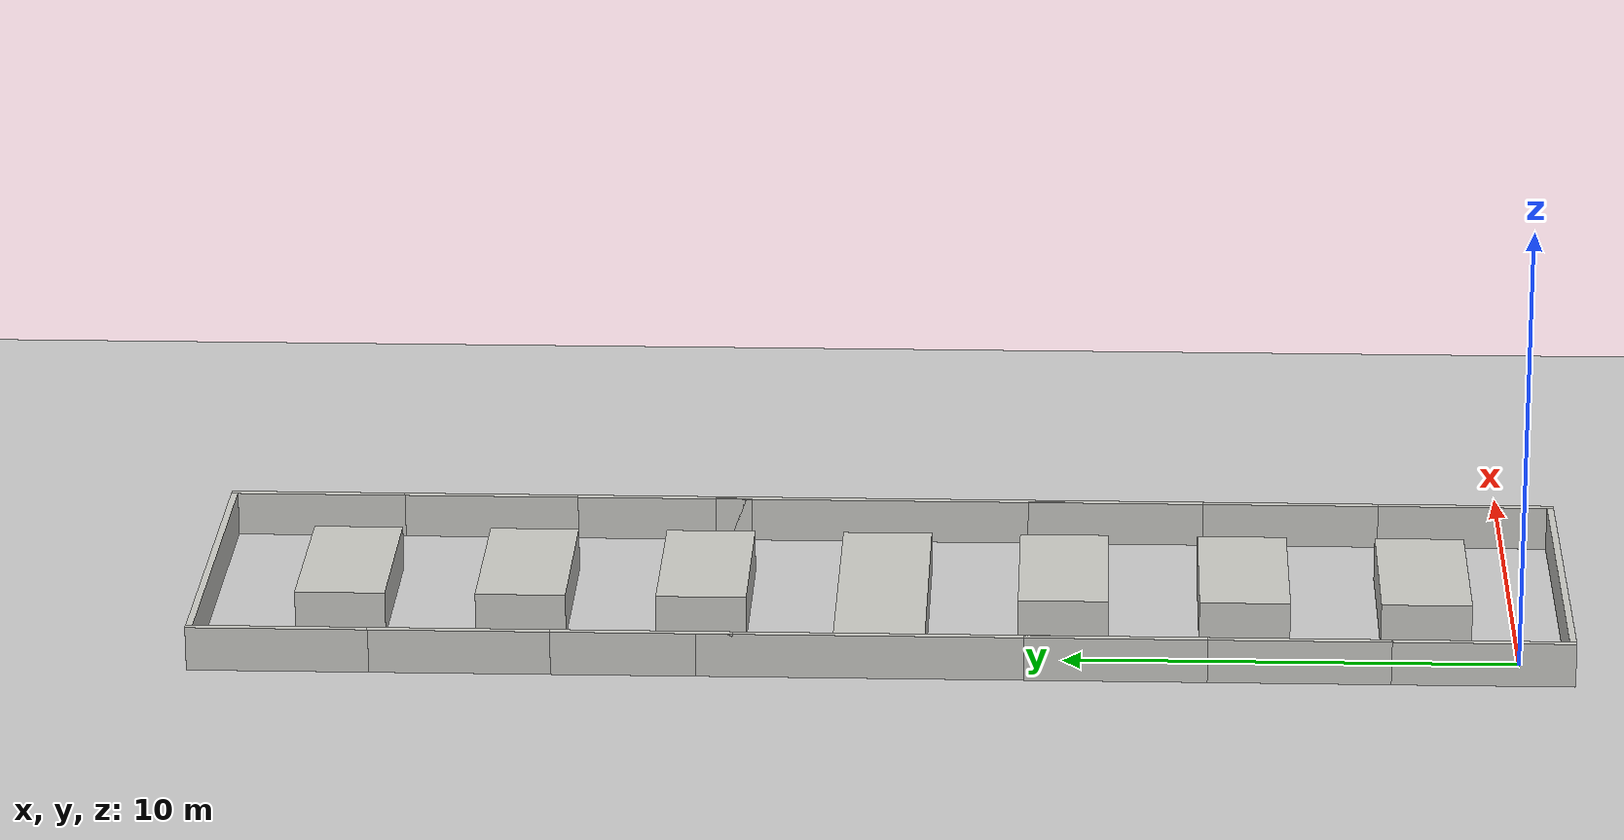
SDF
<sdf version="1.6">
 <world name="default">
  <light name="sun" type="directional">
   <pose>0 0 10 0 -0 0</pose>
   <diffuse>0.8 0.8 0.8 1</diffuse>
   <specular>0.1 0.1 0.1 1</specular>
   <attenuation>
    <range>1000</range>
    <constant>0.9</constant>
    <linear>0.01</linear>
    <quadratic>0.001</quadratic>
   </attenuation>
   <direction>-0.5 0.5 -1</direction>
  </light>
  <model name="ground_plane">
   <static>1</static>
   <link name="link">
    <collision name="collision">
     <geometry><plane><normal>0 0 1</normal><size>100 100</size></plane></geometry>
     <surface><friction><ode><mu>100</mu><mu2>50</mu2></ode></friction></surface>
    </collision>
    <visual name="visual">
     <cast_shadows>0</cast_shadows>
     <geometry><plane><normal>0 0 1</normal><size>100 100</size></plane></geometry>
     <material>
      <script><uri>file://media/materials/scripts/concrete.material</uri><name>Concrete/1</name></script>
     </material>
    </visual>
   </link>
  </model>
  <gravity>0 0 -9.8</gravity>
  <magnetic_field>6e-06 2.3e-05 -4.2e-05</magnetic_field>
  <atmosphere type="adiabatic"/>
  <physics name="default_physics" default="0" type="ode">
   <max_step_size>0.001</max_step_size>
   <real_time_factor>1.5</real_time_factor>
   <real_time_update_rate>1500</real_time_update_rate>
  </physics>
  <scene><ambient>0.4 0.4 0.4 1</ambient><background>0.7 0.7 0.7 1</background><shadows>1</shadows></scene>
  <spherical_coordinates>
   <surface_model>EARTH_WGS84</surface_model>
   <latitude_deg>0</latitude_deg>
   <longitude_deg>0</longitude_deg>
   <elevation>0</elevation>
   <heading_deg>0</heading_deg>
  </spherical_coordinates>
  <model name="wall_8meter">
   <static>1</static>
   <pose>3 -1.075 0 0 -0 0</pose>
   <link name="Wall">
    <collision name="Wall_Collision">
     <geometry><box><size>8 0.15 1</size></box></geometry>
     <pose>0 0 0.5 0 -0 0</pose>
    </collision>
    <visual name="Wall_Visual">
     <pose>0 0 0.5 0 -0 0</pose>
     <geometry><box><size>8 0.15 1</size></box></geometry>
     <material>
      <script><uri>file://media/materials/scripts/gazebo.material</uri><name>Gazebo/CeilingTiled</name></script>
      <ambient>1 0.764706 0.305882 1</ambient>
     </material>
    </visual>
   </link>
  </model>
  <model name="block_2x4m">
   <pose>3 2 0 0 0 -1.5708</pose>
   <link name="Block">
    <collision name="Block_Collision">
     <geometry><box><size>2 4 1</size></box></geometry>
     <pose>0 0 0.5 0 -0 0</pose>
    </collision>
    <visual name="Block_Visual">
     <pose>0 0 0.5 0 -0 0</pose>
     <geometry><box><size>2 4 1</size></box></geometry>
     <material>
      <script><uri>file://media/materials/scripts/gazebo.material</uri><name>Gazebo/CeilingTiled</name></script>
      <ambient>1 0.764706 0.305882 1</ambient>
     </material>
    </visual>
   </link>
   <static>1</static>
  </model>
  <model name="block_2x4m_clone">
   <pose>3 6 0 0 0 -1.5708</pose>
   <link name="Block">
    <collision name="Block_Collision">
     <geometry><box><size>2 4 1</size></box></geometry>
     <pose>0 0 0.5 0 -0 0</pose>
    </collision>
    <visual name="Block_Visual">
     <pose>0 0 0.5 0 -0 0</pose>
     <geometry><box><size>2 4 1</size></box></geometry>
     <material>
      <script><uri>file://media/materials/scripts/gazebo.material</uri><name>Gazebo/CeilingTiled</name></script>
      <ambient>1 0.764706 0.305882 1</ambient>
     </material>
    </visual>
   </link>
   <static>1</static>
  </model>
  <model name="block_2x6m_0">
   <pose>2 14 0 0 0 -1.5708</pose>
   <link name="Block">
    <collision name="Block_Collision">
     <geometry><box><size>2 6 1</size></box></geometry>
     <pose>0 0 0.5 0 -0 0</pose>
    </collision>
    <visual name="Block_Visual">
     <pose>0 0 0.5 0 -0 0</pose>
     <geometry><box><size>2 6 1</size></box></geometry>
     <material>
      <script><uri>file://media/materials/scripts/gazebo.material</uri><name>Gazebo/CeilingTiled</name></script>
      <ambient>1 0.764706 0.305882 1</ambient>
     </material>
    </visual>
   </link>
   <static>1</static>
  </model>
  <model name="block_2x4m_clone_clone">
   <pose>3 10 0 0 0 -1.5708</pose>
   <link name="Block">
    <collision name="Block_Collision">
     <geometry><box><size>2 4 1</size></box></geometry>
     <pose>0 0 0.5 0 -0 0</pose>
    </collision>
    <visual name="Block_Visual">
     <pose>0 0 0.5 0 -0 0</pose>
     <geometry><box><size>2 4 1</size></box></geometry>
     <material>
      <script><uri>file://media/materials/scripts/gazebo.material</uri><name>Gazebo/CeilingTiled</name></script>
      <ambient>1 0.764706 0.305882 1</ambient>
     </material>
    </visual>
   </link>
   <static>1</static>
  </model>
  <model name="block_2x4m_clone_clone_0">
   <pose>3 18 0 0 0 -1.5708</pose>
   <link name="Block">
    <collision name="Block_Collision">
     <geometry><box><size>2 4 1</size></box></geometry>
     <pose>0 0 0.5 0 -0 0</pose>
    </collision>
    <visual name="Block_Visual">
     <pose>0 0 0.5 0 -0 0</pose>
     <geometry><box><size>2 4 1</size></box></geometry>
     <material>
      <script><uri>file://media/materials/scripts/gazebo.material</uri><name>Gazebo/CeilingTiled</name></script>
      <ambient>1 0.764706 0.305882 1</ambient>
     </material>
    </visual>
   </link>
   <static>1</static>
  </model>
  <model name="wall_8meter_clone">
   <static>1</static>
   <pose>3 29.075 0 0 -0 0</pose>
   <link name="Wall">
    <collision name="Wall_Collision">
     <geometry><box><size>8 0.15 1</size></box></geometry>
     <pose>0 0 0.5 0 -0 0</pose>
    </collision>
    <visual name="Wall_Visual">
     <pose>0 0 0.5 0 -0 0</pose>
     <geometry><box><size>8 0.15 1</size></box></geometry>
     <material>
      <script><uri>file://media/materials/scripts/gazebo.material</uri><name>Gazebo/CeilingTiled</name></script>
      <ambient>1 0.764706 0.305882 1</ambient>
     </material>
    </visual>
   </link>
  </model>
  <model name="wall_4meter">
   <static>1</static>
   <pose>7.075 0.850301 0 0 0 -1.5708</pose>
   <link name="Wall">
    <collision name="Wall_Collision">
     <geometry><box><size>4 0.15 1</size></box></geometry>
     <pose>0 0 0.5 0 -0 0</pose>
    </collision>
    <visual name="Wall_Visual">
     <pose>0 0 0.5 0 -0 0</pose>
     <geometry><box><size>4 0.15 1</size></box></geometry>
     <material>
      <script><uri>file://media/materials/scripts/gazebo.material</uri><name>Gazebo/CeilingTiled</name></script>
      <ambient>1 0.764706 0.305882 1</ambient>
     </material>
    </visual>
   </link>
  </model>
  <model name="wall_4meter_clone">
   <static>1</static>
   <pose>7.075 4.84786 0 0 0 -1.5708</pose>
   <link name="Wall">
    <collision name="Wall_Collision">
     <geometry><box><size>4 0.15 1</size></box></geometry>
     <pose>0 0 0.5 0 -0 0</pose>
    </collision>
    <visual name="Wall_Visual">
     <pose>0 0 0.5 0 -0 0</pose>
     <geometry><box><size>4 0.15 1</size></box></geometry>
     <material>
      <script><uri>file://media/materials/scripts/gazebo.material</uri><name>Gazebo/CeilingTiled</name></script>
      <ambient>1 0.764706 0.305882 1</ambient>
     </material>
    </visual>
   </link>
  </model>
  <model name="wall_4meter_clone_clone_0">
   <static>1</static>
   <pose>7.07504 23.1666 0 0 0 -1.5708</pose>
   <link name="Wall">
    <collision name="Wall_Collision">
     <geometry><box><size>4 0.15 1</size></box></geometry>
     <pose>0 0 0.5 0 -0 0</pose>
    </collision>
    <visual name="Wall_Visual">
     <pose>0 0 0.5 0 -0 0</pose>
     <geometry><box><size>4 0.15 1</size></box></geometry>
     <material>
      <script><uri>file://media/materials/scripts/gazebo.material</uri><name>Gazebo/CeilingTiled</name></script>
      <ambient>1 0.764706 0.305882 1</ambient>
     </material>
    </visual>
   </link>
  </model>
  <model name="wall_4meter_clone_clone_1">
   <static>1</static>
   <pose>7.07504 27.1489 0 0 0 -1.5708</pose>
   <link name="Wall">
    <collision name="Wall_Collision">
     <geometry><box><size>4 0.15 1</size></box></geometry>
     <pose>0 0 0.5 0 -0 0</pose>
    </collision>
    <visual name="Wall_Visual">
     <pose>0 0 0.5 0 -0 0</pose>
     <geometry><box><size>4 0.15 1</size></box></geometry>
     <material>
      <script><uri>file://media/materials/scripts/gazebo.material</uri><name>Gazebo/CeilingTiled</name></script>
      <ambient>1 0.764706 0.305882 1</ambient>
     </material>
    </visual>
   </link>
  </model>
  <model name="wall_4meter_clone_0">
   <static>1</static>
   <pose>-1.075 0.850891 0 0 0 -1.5708</pose>
   <link name="Wall">
    <collision name="Wall_Collision">
     <geometry><box><size>4 0.15 1</size></box></geometry>
     <pose>0 0 0.5 0 -0 0</pose>
    </collision>
    <visual name="Wall_Visual">
     <pose>0 0 0.5 0 -0 0</pose>
     <geometry><box><size>4 0.15 1</size></box></geometry>
     <material>
      <script><uri>file://media/materials/scripts/gazebo.material</uri><name>Gazebo/CeilingTiled</name></script>
      <ambient>1 0.764706 0.305882 1</ambient>
     </material>
    </visual>
   </link>
  </model>
  <model name="wall_4meter_clone_0_clone">
   <static>1</static>
   <pose>-1.075 4.85066 0 0 0 -1.5708</pose>
   <link name="Wall">
    <collision name="Wall_Collision">
     <geometry><box><size>4 0.15 1</size></box></geometry>
     <pose>0 0 0.5 0 -0 0</pose>
    </collision>
    <visual name="Wall_Visual">
     <pose>0 0 0.5 0 -0 0</pose>
     <geometry><box><size>4 0.15 1</size></box></geometry>
     <material>
      <script><uri>file://media/materials/scripts/gazebo.material</uri><name>Gazebo/CeilingTiled</name></script>
      <ambient>1 0.764706 0.305882 1</ambient>
     </material>
    </visual>
   </link>
  </model>
  <model name="wall_4meter_clone_0_clone_0">
   <static>1</static>
   <pose>-1.075 27.1546 0 0 0 -1.5708</pose>
   <link name="Wall">
    <collision name="Wall_Collision">
     <geometry><box><size>4 0.15 1</size></box></geometry>
     <pose>0 0 0.5 0 -0 0</pose>
    </collision>
    <visual name="Wall_Visual">
     <pose>0 0 0.5 0 -0 0</pose>
     <geometry><box><size>4 0.15 1</size></box></geometry>
     <material>
      <script><uri>file://media/materials/scripts/gazebo.material</uri><name>Gazebo/CeilingTiled</name></script>
      <ambient>1 0.764706 0.305882 1</ambient>
     </material>
    </visual>
   </link>
  </model>
  <model name="wall_4meter_clone_0_clone_1">
   <static>1</static>
   <pose>-1.075 23.1759 0 0 0 -1.5708</pose>
   <link name="Wall">
    <collision name="Wall_Collision">
     <geometry><box><size>4 0.15 1</size></box></geometry>
     <pose>0 0 0.5 0 -0 0</pose>
    </collision>
    <visual name="Wall_Visual">
     <pose>0 0 0.5 0 -0 0</pose>
     <geometry><box><size>4 0.15 1</size></box></geometry>
     <material>
      <script><uri>file://media/materials/scripts/gazebo.material</uri><name>Gazebo/CeilingTiled</name></script>
      <ambient>1 0.764706 0.305882 1</ambient>
     </material>
    </visual>
   </link>
  </model>
  <model name="block_2x4m_clone_clone_clone">
   <pose>3 22 0 0 0 -1.5708</pose>
   <link name="Block">
    <collision name="Block_Collision">
     <geometry><box><size>2 4 1</size></box></geometry>
     <pose>0 0 0.5 0 -0 0</pose>
    </collision>
    <visual name="Block_Visual">
     <pose>0 0 0.5 0 -0 0</pose>
     <geometry><box><size>2 4 1</size></box></geometry>
     <material>
      <script><uri>file://media/materials/scripts/gazebo.material</uri><name>Gazebo/CeilingTiled</name></script>
      <ambient>1 0.764706 0.305882 1</ambient>
     </material>
    </visual>
   </link>
   <static>1</static>
  </model>
  <model name="block_2x4m_clone_clone_clone_0">
   <pose>3 26 0 0 0 -1.5708</pose>
   <link name="Block">
    <collision name="Block_Collision">
     <geometry><box><size>2 4 1</size></box></geometry>
     <pose>0 0 0.5 0 -0 0</pose>
    </collision>
    <visual name="Block_Visual">
     <pose>0 0 0.5 0 -0 0</pose>
     <geometry><box><size>2 4 1</size></box></geometry>
     <material>
      <script><uri>file://media/materials/scripts/gazebo.material</uri><name>Gazebo/CeilingTiled</name></script>
      <ambient>1 0.764706 0.305882 1</ambient>
     </material>
    </visual>
   </link>
   <static>1</static>
  </model>
  <model name="wall_4meter_clone_0_clone_1_clone">
   <static>1</static>
   <pose>-1.075 19.1813 0 0 0 -1.5708</pose>
   <link name="Wall">
    <collision name="Wall_Collision">
     <geometry><box><size>4 0.15 1</size></box></geometry>
     <pose>0 0 0.5 0 -0 0</pose>
    </collision>
    <visual name="Wall_Visual">
     <pose>0 0 0.5 0 -0 0</pose>
     <geometry><box><size>4 0.15 1</size></box></geometry>
     <material>
      <script><uri>file://media/materials/scripts/gazebo.material</uri><name>Gazebo/CeilingTiled</name></script>
      <ambient>1 0.764706 0.305882 1</ambient>
     </material>
    </visual>
   </link>
  </model>
  <model name="wall_4meter_clone_0_clone_1_clone_clone">
   <static>1</static>
   <pose>7.075 19.1716 0 0 0 -1.5708</pose>
   <link name="Wall">
    <collision name="Wall_Collision">
     <geometry><box><size>4 0.15 1</size></box></geometry>
     <pose>0 0 0.5 0 -0 0</pose>
    </collision>
    <visual name="Wall_Visual">
     <pose>0 0 0.5 0 -0 0</pose>
     <geometry><box><size>4 0.15 1</size></box></geometry>
     <material>
      <script><uri>file://media/materials/scripts/gazebo.material</uri><name>Gazebo/CeilingTiled</name></script>
      <ambient>1 0.764706 0.305882 1</ambient>
     </material>
    </visual>
   </link>
  </model>
  <model name="wall_4meter_clone_0_clone_1_clone_clone_0">
   <static>1</static>
   <pose>7.075 8.84564 0 0 0 -1.5708</pose>
   <link name="Wall">
    <collision name="Wall_Collision">
     <geometry><box><size>4 0.15 1</size></box></geometry>
     <pose>0 0 0.5 0 -0 0</pose>
    </collision>
    <visual name="Wall_Visual">
     <pose>0 0 0.5 0 -0 0</pose>
     <geometry><box><size>4 0.15 1</size></box></geometry>
     <material>
      <script><uri>file://media/materials/scripts/gazebo.material</uri><name>Gazebo/CeilingTiled</name></script>
      <ambient>1 0.764706 0.305882 1</ambient>
     </material>
    </visual>
   </link>
  </model>
  <model name="wall_4meter_clone_0_clone_1_clone_clone_1">
   <static>1</static>
   <pose>-1.075 8.84797 0 0 0 -1.5708</pose>
   <link name="Wall">
    <collision name="Wall_Collision">
     <geometry><box><size>4 0.15 1</size></box></geometry>
     <pose>0 0 0.5 0 -0 0</pose>
    </collision>
    <visual name="Wall_Visual">
     <pose>0 0 0.5 0 -0 0</pose>
     <geometry><box><size>4 0.15 1</size></box></geometry>
     <material>
      <script><uri>file://media/materials/scripts/gazebo.material</uri><name>Gazebo/CeilingTiled</name></script>
      <ambient>1 0.764706 0.305882 1</ambient>
     </material>
    </visual>
   </link>
  </model>
  <model name="wall_8meter_0">
   <static>1</static>
   <pose>7.075 14 0 0 -0 1.5708</pose>
   <link name="Wall">
    <collision name="Wall_Collision">
     <geometry><box><size>8 0.15 1</size></box></geometry>
     <pose>0 0 0.5 0 -0 0</pose>
    </collision>
    <visual name="Wall_Visual">
     <pose>0 0 0.5 0 -0 0</pose>
     <geometry><box><size>8 0.15 1</size></box></geometry>
     <material>
      <script><uri>file://media/materials/scripts/gazebo.material</uri><name>Gazebo/CeilingTiled</name></script>
      <ambient>1 0.764706 0.305882 1</ambient>
     </material>
    </visual>
   </link>
  </model>
  <model name="wall_8meter_0_clone">
   <static>1</static>
   <pose>-1.075 14 0 0 -0 1.5708</pose>
   <link name="Wall">
    <collision name="Wall_Collision">
     <geometry><box><size>8 0.15 1</size></box></geometry>
     <pose>0 0 0.5 0 -0 0</pose>
    </collision>
    <visual name="Wall_Visual">
     <pose>0 0 0.5 0 -0 0</pose>
     <geometry><box><size>8 0.15 1</size></box></geometry>
     <material>
      <script><uri>file://media/materials/scripts/gazebo.material</uri><name>Gazebo/CeilingTiled</name></script>
      <ambient>1 0.764706 0.305882 1</ambient>
     </material>
    </visual>
   </link>
  </model>
 </world>
</sdf>
